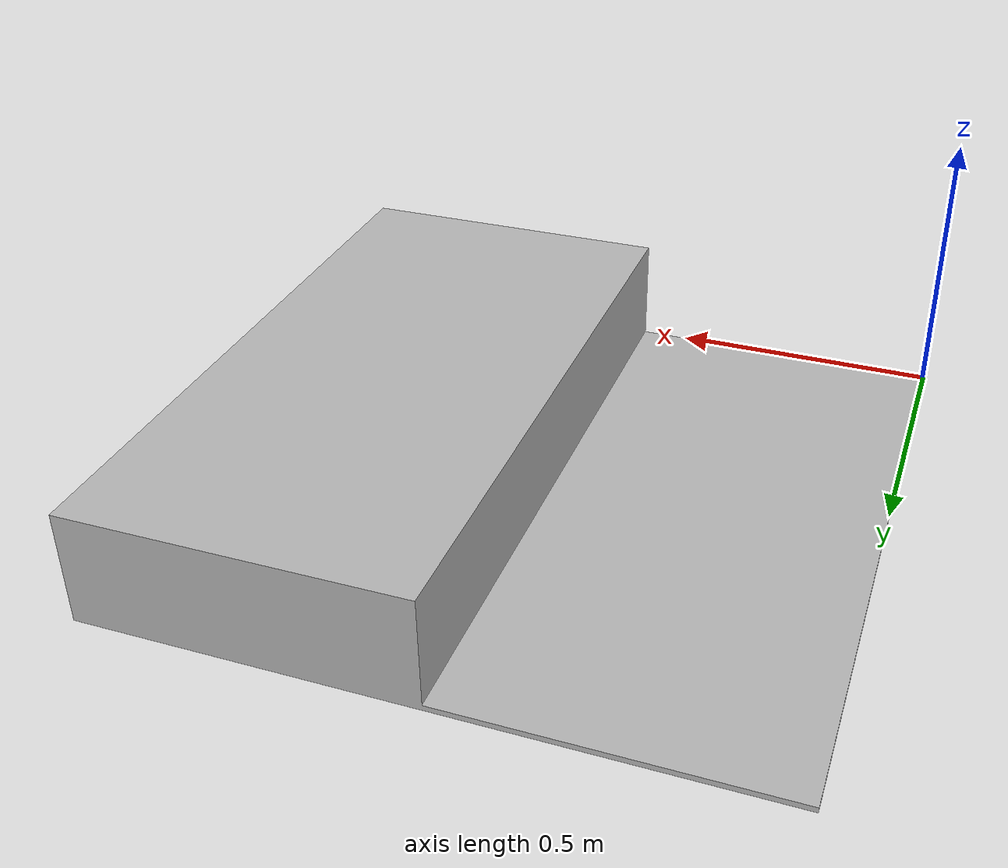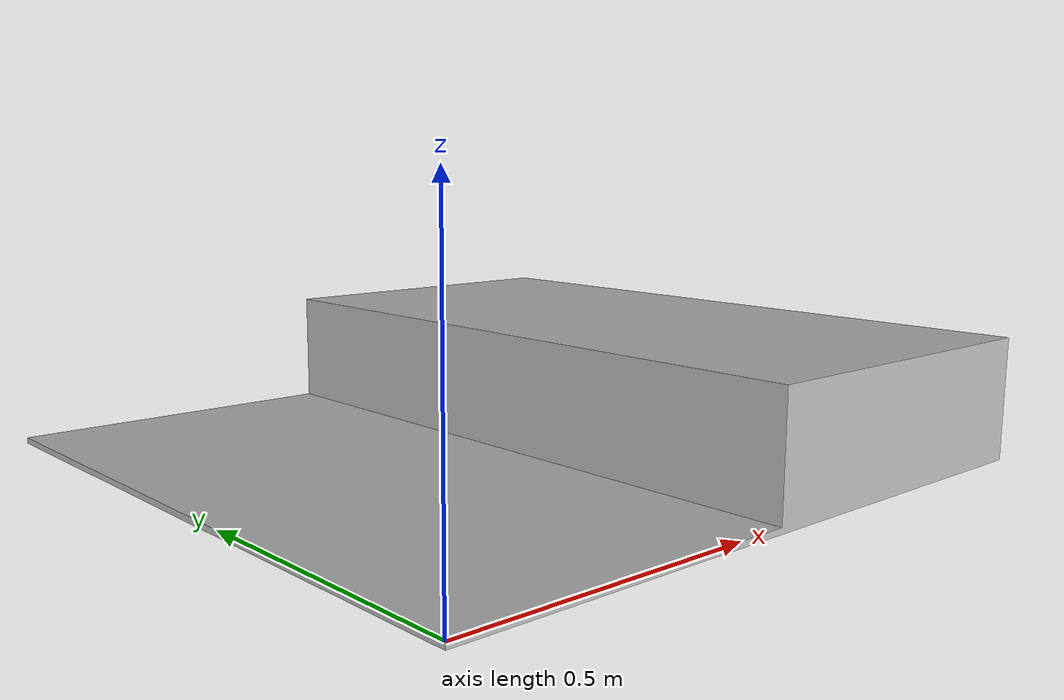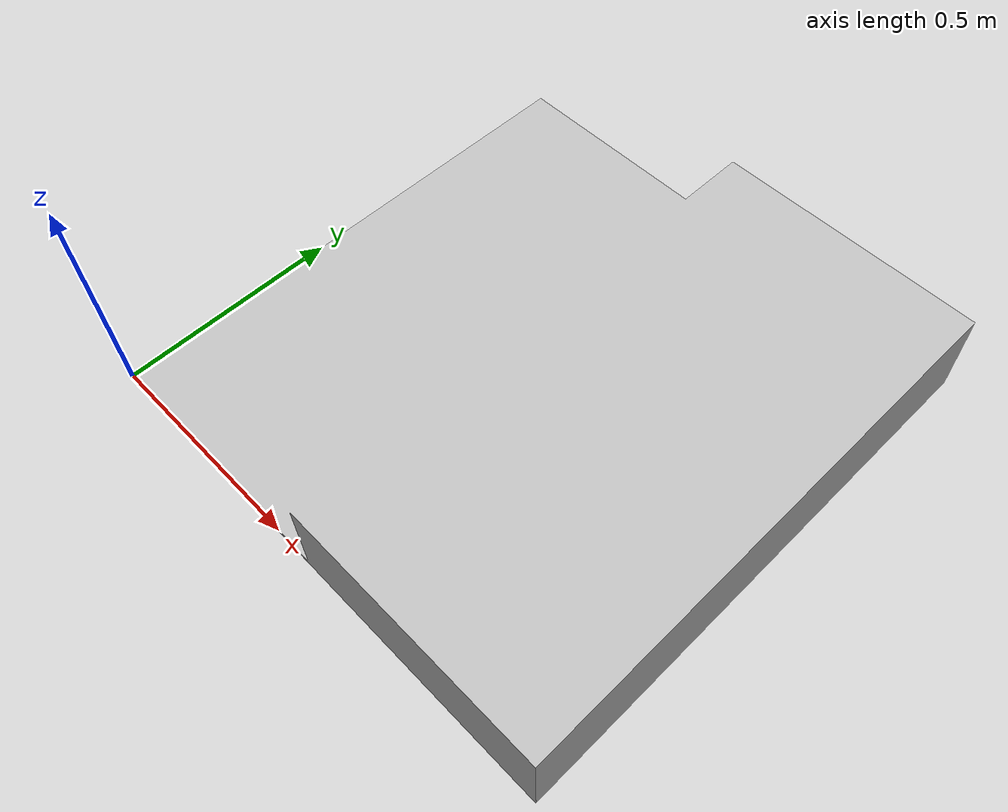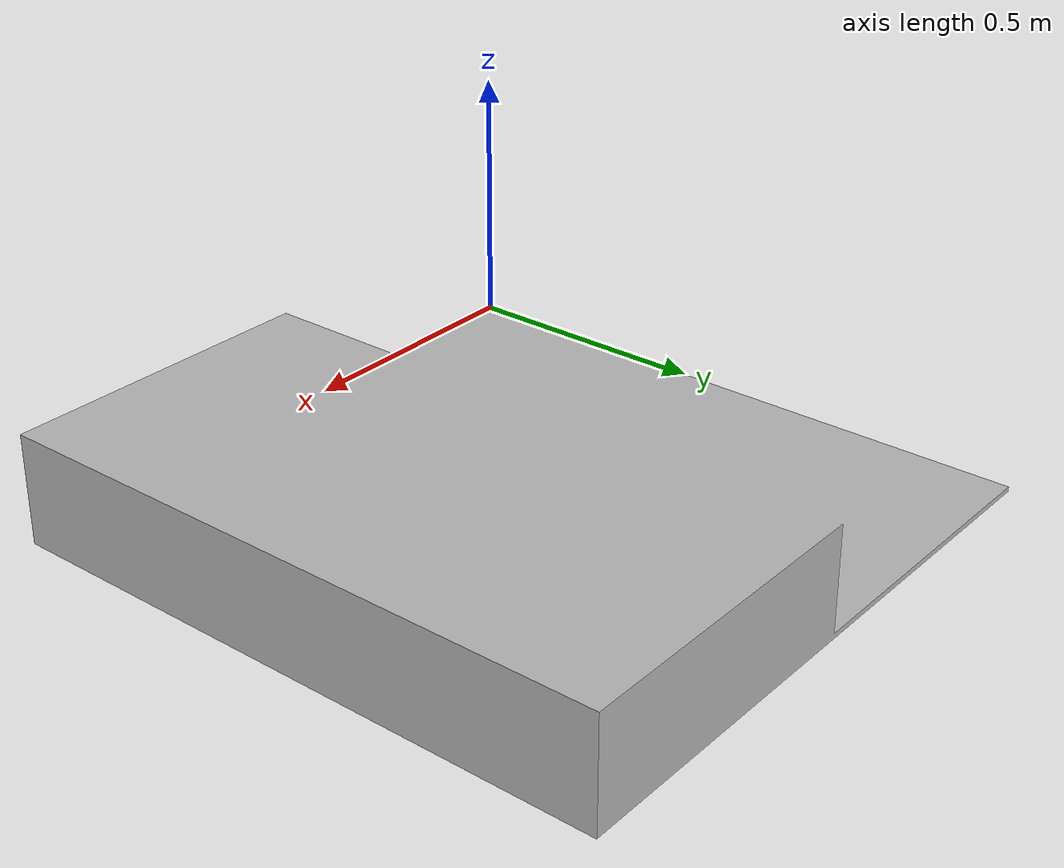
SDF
<?xml version="1.0" ?>
<sdf version="1.5">
  <model name="Step20">
        <static>true</static>
    <link name="link">
    <gravity>0</gravity>
      <collision name="collision">
        <geometry>
          <mesh>
            <scale>1 1 1</scale>
            <uri>model://step_20/meshes/step20.dae</uri>
          </mesh>
        </geometry>
      </collision>
      <visual name="visual">
        <geometry>
          <mesh>
            <scale>1 1 1</scale>
            <uri>model://step_20/meshes/step20.dae</uri>
          </mesh>
        </geometry>
      </visual>
    </link>
  </model>
</sdf>
